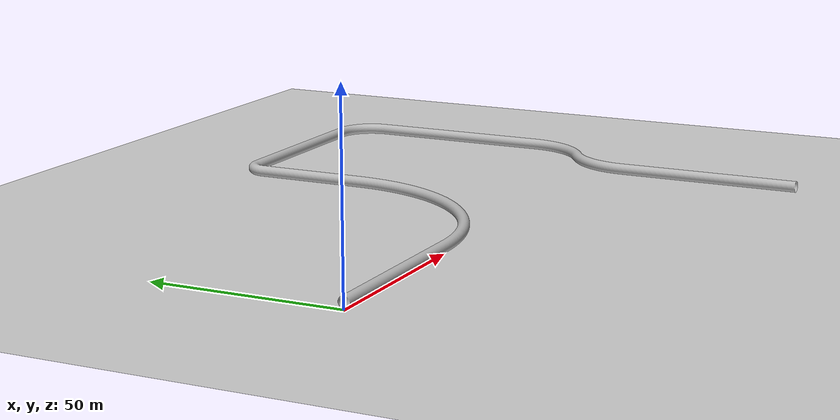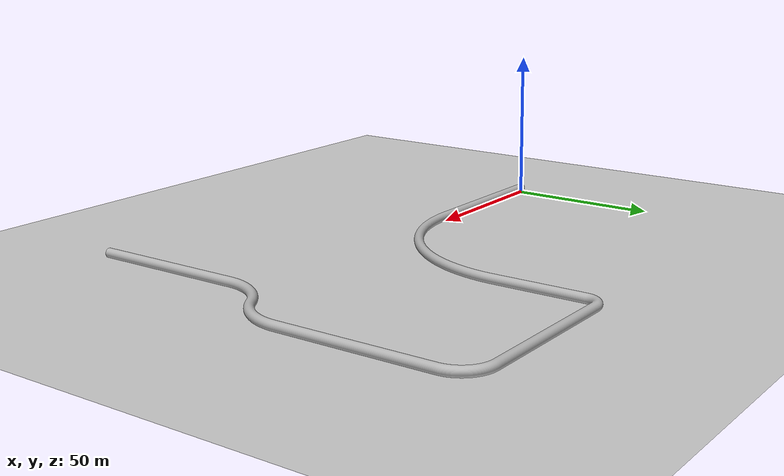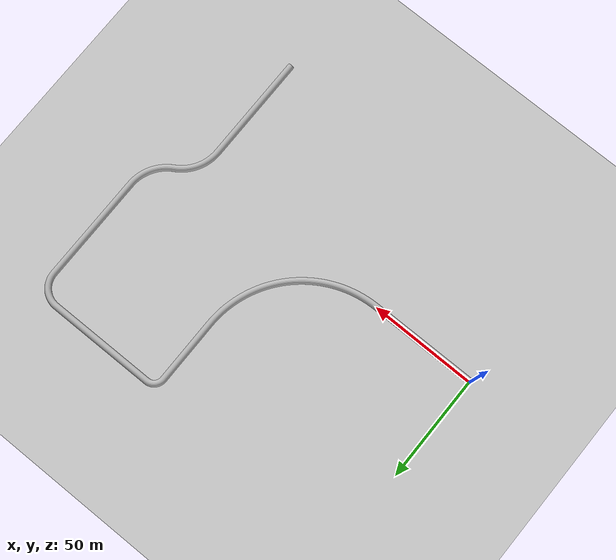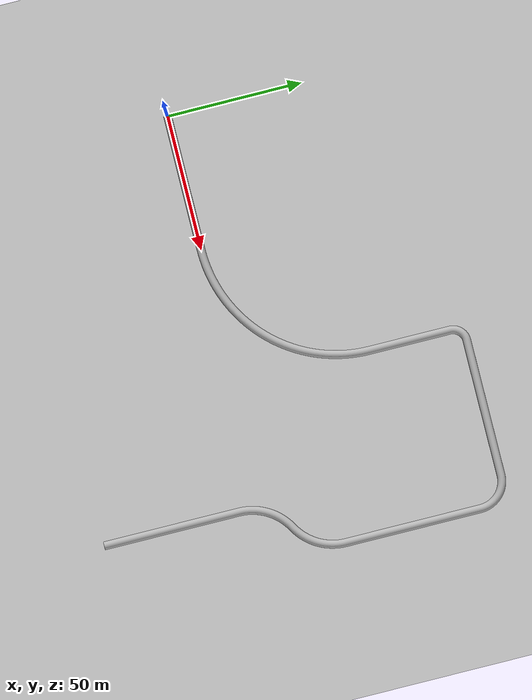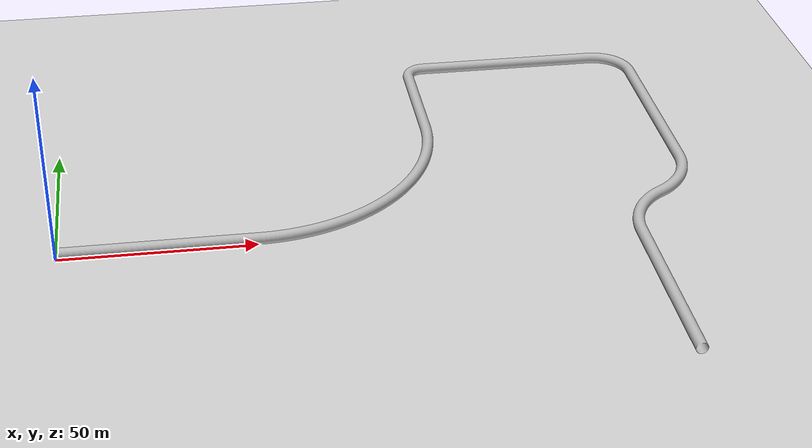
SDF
<?xml version="1.0" ?>
<sdf version="1.6">
  <world name="default">
    <gui>
      <camera name="user_camera">
        <pose>-5 0 1 0 0.2 0</pose>
      </camera>
    </gui>
    <physics type="ode">
      <ode>
        <solver>
          <type>quick</type>
          <iters>100</iters>
          <sor>1.0</sor>
        </solver>
        <constraints>
          <cfm>0.0</cfm>
          <erp>0.2</erp>
          <contact_max_correcting_vel>0.1</contact_max_correcting_vel>
          <contact_surface_layer>0.0</contact_surface_layer>
        </constraints>
      </ode>
      <real_time_update_rate>-1</real_time_update_rate>
    </physics>
    <gravity>0 0 -9.8</gravity>
    <include>
      <uri>model://sun</uri>
    </include>

    <model name="ground_plane">
      <static>true</static>
      <link name="link">
        <collision name="collision">
          <geometry>
            <plane>
              <normal>0 0 1</normal>
              <size>5000 5000</size>
            </plane>
          </geometry>
          <surface>
            <friction>
              <ode>
                <mu>100</mu>
                <mu2>50</mu2>
              </ode>
            </friction>
          </surface>
        </collision>
        <visual name="runway">
          <pose>000 0 0.005 0 0 0</pose>
          <cast_shadows>false</cast_shadows>
          <geometry>
            <plane>
              <normal>0 0 1</normal>
              <size>1829 45</size>
            </plane>
          </geometry>
          <material>
            <script>
              <uri>file://media/materials/scripts/gazebo.material</uri>
              <name>Gazebo/Runway</name>
            </script>
          </material>
        </visual>

        <visual name="grass">
          <pose>0 0 -0.1 0 0 0</pose>
          <cast_shadows>false</cast_shadows>
          <geometry>
            <plane>
              <normal>0 0 1</normal>
              <size>5000 5000</size>
            </plane>
          </geometry>
          <material>
            <script>
              <uri>file://media/materials/scripts/gazebo.material</uri>
              <name>Gazebo/Grass</name>
            </script>
          </material>
        </visual>

      </link>
    </model>

    <include>
      <uri>model://sewage_pipe_01</uri>
    </include>

  </world>
</sdf>

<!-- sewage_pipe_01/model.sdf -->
<sdf version="1.6">
    <model name="sewage_pipe_01">
      <pose>0 0 1.8 0 0 0</pose>
      <static>true</static>
      <link name="sewage_pipe_link">
        <collision name="collision_pipe">
          <geometry>
            <mesh>
                <uri>model://sewage_pipe_01/sewage_pipe_01.stl</uri>
            </mesh>
          </geometry>
          <surface>
            <friction>
              <ode>
                <mu>100</mu>
                <mu2>50</mu2>
              </ode>
            </friction>
          </surface>
        </collision>
        <visual name="visual_pipe">
          <geometry>
            <mesh>
                <uri>model://sewage_pipe_01/sewage_pipe_01.dae</uri>
            </mesh>
          </geometry>
        </visual>
      </link>
    </model>
</sdf>
